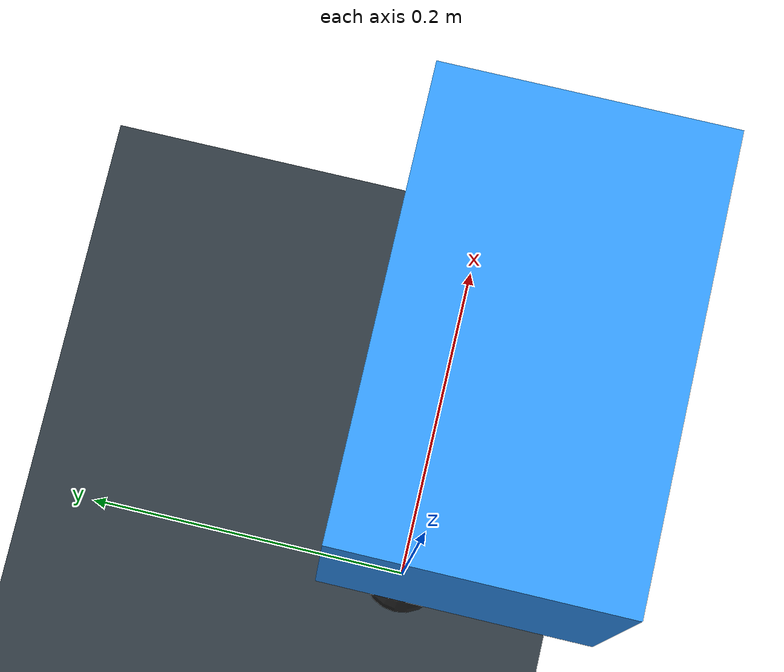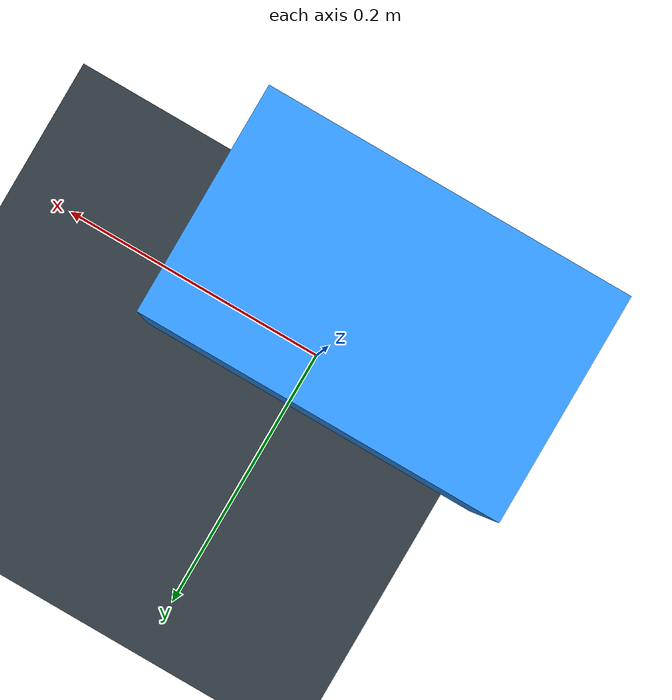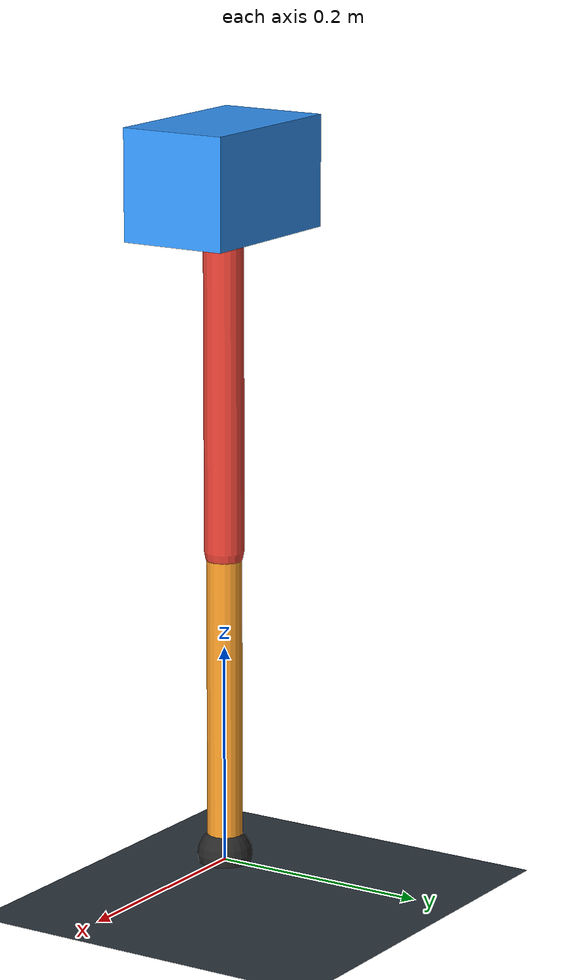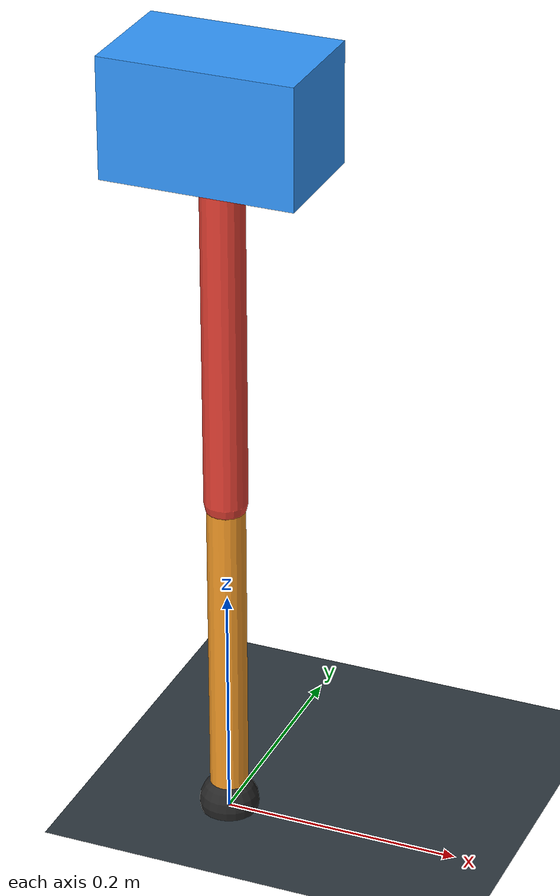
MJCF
<mujoco model="single_axis_two_bar">
  <compiler angle="radian" inertiafromgeom="true"/>
  <option timestep="0.001" integrator="implicitfast" gravity="0 0 -9.81"/>
  <default>
    <joint damping="0.08"/>
    <geom friction="1.2 0.01 0.0001" condim="3"/>
  </default>
  <worldbody>
    <geom name="floor" type="plane" size="5 5 0.1" rgba="0.18 0.22 0.25 1"/>
    <body name="carriage" pos="0 0 0.6265833759990301">
      <joint name="pole_slide" type="slide" axis="0 0 1"/>
      <geom name="payload" type="box" size="0.08 0.05 0.05" mass="2.5290391833335426" rgba="0.2 0.6 1 1"/>
      <body name="thigh" pos="0 0 0">
        <joint name="hip" type="hinge" axis="0 1 0"/>
        <geom name="thigh_link" type="capsule" fromto="0 0 0 0 0 -0.3370833781204937" size="0.018" mass="0.24017636107471005" rgba="0.9 0.25 0.2 1"/>
        <body name="shank" pos="0 0 -0.3370833781204937">
          <joint name="knee" type="hinge" axis="0 1 0"/>
          <geom name="shank_link" type="capsule" fromto="0 0 0 0 0 -0.28310566930118686" size="0.016" mass="0.20171653028846095" rgba="0.95 0.6 0.15 1"/>
          <geom name="foot" type="sphere" pos="0 0 -0.28310566930118686" size="0.025" mass="0.03" rgba="0.15 0.15 0.15 1"/>
          <site name="toe" pos="0 0 -0.28310566930118686" size="0.008"/>
        </body>
      </body>
    </body>
  </worldbody>
  <actuator>
    <motor name="hip_motor" joint="hip" ctrlrange="-39.012849660637336 39.012849660637336"/>
    <motor name="knee_motor" joint="knee" ctrlrange="-101.98008866526723 101.98008866526723"/>
  </actuator>
</mujoco>
